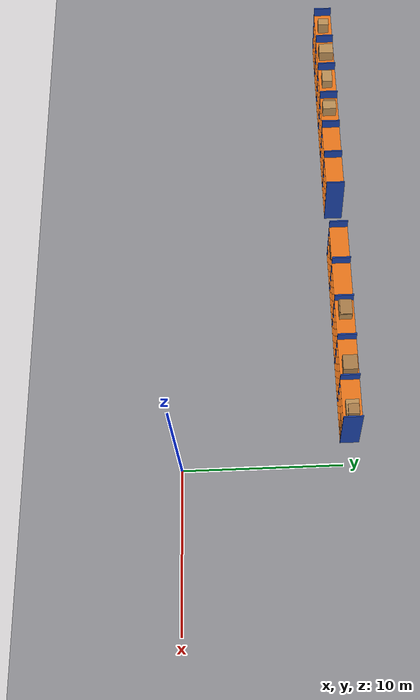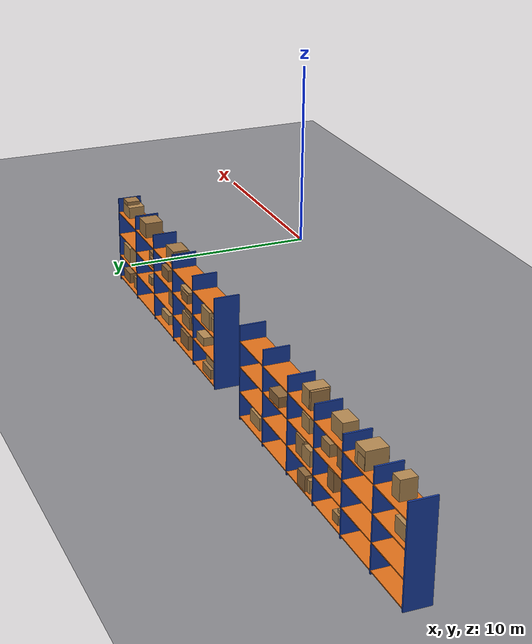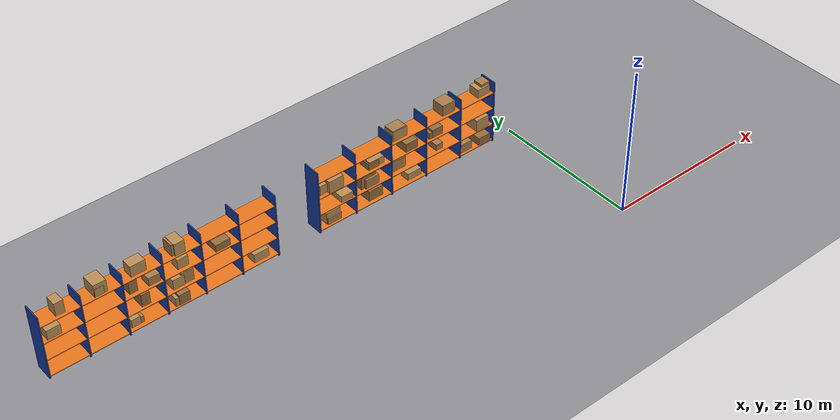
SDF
<sdf version="1.9">
 <world name="warehouse">
  <model name="ground_plane">
   <static>true</static>
   <link name="link">
    <collision name="collision">
     <geometry><plane><normal>0 0 1</normal><size>1 1</size></plane></geometry>
    </collision>
    <visual name="visual">
     <geometry><plane><normal>0 0 1</normal><size>200 100</size></plane></geometry>
     <material>
      <ambient>0.55 0.55 0.57 1</ambient>
      <diffuse>0.55 0.55 0.57 1</diffuse>
      <specular>0.1 0.1 0.1 1</specular>
     </material>
    </visual>
   </link>
  </model>
  <model name="rack24">
   <static>true</static>
   <link name="link">
    <collision name="up0_c">
     <pose>-33.000 10.500 2.250 0 0 0</pose>
     <geometry><box><size>0.080 1.200 4.500</size></box></geometry>
    </collision>
    <visual name="up0_v">
     <pose>-33.000 10.500 2.250 0 0 0</pose>
     <geometry><box><size>0.080 1.200 4.500</size></box></geometry>
     <material>
      <ambient>0.1 0.25 0.65 1</ambient>
      <diffuse>0.1 0.25 0.65 1</diffuse>
      <specular>0.1 0.1 0.1 1</specular>
     </material>
    </visual>
    <collision name="up1_c">
     <pose>-30.500 10.500 2.250 0 0 0</pose>
     <geometry><box><size>0.080 1.200 4.500</size></box></geometry>
    </collision>
    <visual name="up1_v">
     <pose>-30.500 10.500 2.250 0 0 0</pose>
     <geometry><box><size>0.080 1.200 4.500</size></box></geometry>
     <material>
      <ambient>0.1 0.25 0.65 1</ambient>
      <diffuse>0.1 0.25 0.65 1</diffuse>
      <specular>0.1 0.1 0.1 1</specular>
     </material>
    </visual>
    <collision name="up2_c">
     <pose>-28.000 10.500 2.250 0 0 0</pose>
     <geometry><box><size>0.080 1.200 4.500</size></box></geometry>
    </collision>
    <visual name="up2_v">
     <pose>-28.000 10.500 2.250 0 0 0</pose>
     <geometry><box><size>0.080 1.200 4.500</size></box></geometry>
     <material>
      <ambient>0.1 0.25 0.65 1</ambient>
      <diffuse>0.1 0.25 0.65 1</diffuse>
      <specular>0.1 0.1 0.1 1</specular>
     </material>
    </visual>
    <collision name="up3_c">
     <pose>-25.500 10.500 2.250 0 0 0</pose>
     <geometry><box><size>0.080 1.200 4.500</size></box></geometry>
    </collision>
    <visual name="up3_v">
     <pose>-25.500 10.500 2.250 0 0 0</pose>
     <geometry><box><size>0.080 1.200 4.500</size></box></geometry>
     <material>
      <ambient>0.1 0.25 0.65 1</ambient>
      <diffuse>0.1 0.25 0.65 1</diffuse>
      <specular>0.1 0.1 0.1 1</specular>
     </material>
    </visual>
    <collision name="up4_c">
     <pose>-23.000 10.500 2.250 0 0 0</pose>
     <geometry><box><size>0.080 1.200 4.500</size></box></geometry>
    </collision>
    <visual name="up4_v">
     <pose>-23.000 10.500 2.250 0 0 0</pose>
     <geometry><box><size>0.080 1.200 4.500</size></box></geometry>
     <material>
      <ambient>0.1 0.25 0.65 1</ambient>
      <diffuse>0.1 0.25 0.65 1</diffuse>
      <specular>0.1 0.1 0.1 1</specular>
     </material>
    </visual>
    <collision name="up5_c">
     <pose>-20.500 10.500 2.250 0 0 0</pose>
     <geometry><box><size>0.080 1.200 4.500</size></box></geometry>
    </collision>
    <visual name="up5_v">
     <pose>-20.500 10.500 2.250 0 0 0</pose>
     <geometry><box><size>0.080 1.200 4.500</size></box></geometry>
     <material>
      <ambient>0.1 0.25 0.65 1</ambient>
      <diffuse>0.1 0.25 0.65 1</diffuse>
      <specular>0.1 0.1 0.1 1</specular>
     </material>
    </visual>
    <collision name="up6_c">
     <pose>-18.000 10.500 2.250 0 0 0</pose>
     <geometry><box><size>0.080 1.200 4.500</size></box></geometry>
    </collision>
    <visual name="up6_v">
     <pose>-18.000 10.500 2.250 0 0 0</pose>
     <geometry><box><size>0.080 1.200 4.500</size></box></geometry>
     <material>
      <ambient>0.1 0.25 0.65 1</ambient>
      <diffuse>0.1 0.25 0.65 1</diffuse>
      <specular>0.1 0.1 0.1 1</specular>
     </material>
    </visual>
    <collision name="sh0_c">
     <pose>-25.500 10.500 0.150 0 0 0</pose>
     <geometry><box><size>15.000 1.200 0.050</size></box></geometry>
    </collision>
    <visual name="sh0_v">
     <pose>-25.500 10.500 0.150 0 0 0</pose>
     <geometry><box><size>15.000 1.200 0.050</size></box></geometry>
     <material>
      <ambient>0.9 0.45 0.1 1</ambient>
      <diffuse>0.9 0.45 0.1 1</diffuse>
      <specular>0.1 0.1 0.1 1</specular>
     </material>
    </visual>
    <collision name="sh1_c">
     <pose>-25.500 10.500 1.350 0 0 0</pose>
     <geometry><box><size>15.000 1.200 0.050</size></box></geometry>
    </collision>
    <visual name="sh1_v">
     <pose>-25.500 10.500 1.350 0 0 0</pose>
     <geometry><box><size>15.000 1.200 0.050</size></box></geometry>
     <material>
      <ambient>0.9 0.45 0.1 1</ambient>
      <diffuse>0.9 0.45 0.1 1</diffuse>
      <specular>0.1 0.1 0.1 1</specular>
     </material>
    </visual>
    <collision name="sh2_c">
     <pose>-25.500 10.500 2.550 0 0 0</pose>
     <geometry><box><size>15.000 1.200 0.050</size></box></geometry>
    </collision>
    <visual name="sh2_v">
     <pose>-25.500 10.500 2.550 0 0 0</pose>
     <geometry><box><size>15.000 1.200 0.050</size></box></geometry>
     <material>
      <ambient>0.9 0.45 0.1 1</ambient>
      <diffuse>0.9 0.45 0.1 1</diffuse>
      <specular>0.1 0.1 0.1 1</specular>
     </material>
    </visual>
    <collision name="sh3_c">
     <pose>-25.500 10.500 3.750 0 0 0</pose>
     <geometry><box><size>15.000 1.200 0.050</size></box></geometry>
    </collision>
    <visual name="sh3_v">
     <pose>-25.500 10.500 3.750 0 0 0</pose>
     <geometry><box><size>15.000 1.200 0.050</size></box></geometry>
     <material>
      <ambient>0.9 0.45 0.1 1</ambient>
      <diffuse>0.9 0.45 0.1 1</diffuse>
      <specular>0.1 0.1 0.1 1</specular>
     </material>
    </visual>
    <collision name="c0_c">
     <pose>-32.228 10.454 2.903 0 0 0</pose>
     <geometry><box><size>0.849 0.881 0.656</size></box></geometry>
    </collision>
    <visual name="c0_v">
     <pose>-32.228 10.454 2.903 0 0 0</pose>
     <geometry><box><size>0.849 0.881 0.656</size></box></geometry>
     <material>
      <ambient>0.72 0.55 0.33 1</ambient>
      <diffuse>0.72 0.55 0.33 1</diffuse>
      <specular>0.1 0.1 0.1 1</specular>
     </material>
    </visual>
    <collision name="c1_c">
     <pose>-32.311 10.492 2.803 0 0 0</pose>
     <geometry><box><size>0.615 0.701 0.456</size></box></geometry>
    </collision>
    <visual name="c1_v">
     <pose>-32.311 10.492 2.803 0 0 0</pose>
     <geometry><box><size>0.615 0.701 0.456</size></box></geometry>
     <material>
      <ambient>0.72 0.55 0.33 1</ambient>
      <diffuse>0.72 0.55 0.33 1</diffuse>
      <specular>0.1 0.1 0.1 1</specular>
     </material>
    </visual>
    <collision name="c2_c">
     <pose>-31.627 10.468 4.215 0 0 0</pose>
     <geometry><box><size>0.556 0.720 0.881</size></box></geometry>
    </collision>
    <visual name="c2_v">
     <pose>-31.627 10.468 4.215 0 0 0</pose>
     <geometry><box><size>0.556 0.720 0.881</size></box></geometry>
     <material>
      <ambient>0.72 0.55 0.33 1</ambient>
      <diffuse>0.72 0.55 0.33 1</diffuse>
      <specular>0.1 0.1 0.1 1</specular>
     </material>
    </visual>
    <collision name="c3_c">
     <pose>-29.224 10.523 4.189 0 0 0</pose>
     <geometry><box><size>0.804 0.975 0.827</size></box></geometry>
    </collision>
    <visual name="c3_v">
     <pose>-29.224 10.523 4.189 0 0 0</pose>
     <geometry><box><size>0.804 0.975 0.827</size></box></geometry>
     <material>
      <ambient>0.72 0.55 0.33 1</ambient>
      <diffuse>0.72 0.55 0.33 1</diffuse>
      <specular>0.1 0.1 0.1 1</specular>
     </material>
    </visual>
    <collision name="c4_c">
     <pose>-29.314 10.515 4.049 0 0 0</pose>
     <geometry><box><size>0.564 1.005 0.547</size></box></geometry>
    </collision>
    <visual name="c4_v">
     <pose>-29.314 10.515 4.049 0 0 0</pose>
     <geometry><box><size>0.564 1.005 0.547</size></box></geometry>
     <material>
      <ambient>0.72 0.55 0.33 1</ambient>
      <diffuse>0.72 0.55 0.33 1</diffuse>
      <specular>0.1 0.1 0.1 1</specular>
     </material>
    </visual>
    <collision name="c5_c">
     <pose>-27.179 10.549 0.390 0 0 0</pose>
     <geometry><box><size>0.516 0.731 0.431</size></box></geometry>
    </collision>
    <visual name="c5_v">
     <pose>-27.179 10.549 0.390 0 0 0</pose>
     <geometry><box><size>0.516 0.731 0.431</size></box></geometry>
     <material>
      <ambient>0.65 0.48 0.28 1</ambient>
      <diffuse>0.65 0.48 0.28 1</diffuse>
      <specular>0.1 0.1 0.1 1</specular>
     </material>
    </visual>
    <collision name="c6_c">
     <pose>-27.441 10.480 0.454 0 0 0</pose>
     <geometry><box><size>0.584 0.627 0.558</size></box></geometry>
    </collision>
    <visual name="c6_v">
     <pose>-27.441 10.480 0.454 0 0 0</pose>
     <geometry><box><size>0.584 0.627 0.558</size></box></geometry>
     <material>
      <ambient>0.72 0.55 0.33 1</ambient>
      <diffuse>0.72 0.55 0.33 1</diffuse>
      <specular>0.1 0.1 0.1 1</specular>
     </material>
    </visual>
    <collision name="c7_c">
     <pose>-26.713 10.493 1.803 0 0 0</pose>
     <geometry><box><size>0.548 0.862 0.855</size></box></geometry>
    </collision>
    <visual name="c7_v">
     <pose>-26.713 10.493 1.803 0 0 0</pose>
     <geometry><box><size>0.548 0.862 0.855</size></box></geometry>
     <material>
      <ambient>0.58 0.42 0.24 1</ambient>
      <diffuse>0.58 0.42 0.24 1</diffuse>
      <specular>0.1 0.1 0.1 1</specular>
     </material>
    </visual>
    <collision name="c8_c">
     <pose>-26.013 10.458 2.845 0 0 0</pose>
     <geometry><box><size>0.744 0.764 0.541</size></box></geometry>
    </collision>
    <visual name="c8_v">
     <pose>-26.013 10.458 2.845 0 0 0</pose>
     <geometry><box><size>0.744 0.764 0.541</size></box></geometry>
     <material>
      <ambient>0.65 0.48 0.28 1</ambient>
      <diffuse>0.65 0.48 0.28 1</diffuse>
      <specular>0.1 0.1 0.1 1</specular>
     </material>
    </visual>
    <collision name="c9_c">
     <pose>-27.277 10.509 3.017 0 0 0</pose>
     <geometry><box><size>0.511 0.644 0.884</size></box></geometry>
    </collision>
    <visual name="c9_v">
     <pose>-27.277 10.509 3.017 0 0 0</pose>
     <geometry><box><size>0.511 0.644 0.884</size></box></geometry>
     <material>
      <ambient>0.58 0.42 0.24 1</ambient>
      <diffuse>0.58 0.42 0.24 1</diffuse>
      <specular>0.1 0.1 0.1 1</specular>
     </material>
    </visual>
    <collision name="c10_c">
     <pose>-26.851 10.455 4.151 0 0 0</pose>
     <geometry><box><size>0.961 0.687 0.751</size></box></geometry>
    </collision>
    <visual name="c10_v">
     <pose>-26.851 10.455 4.151 0 0 0</pose>
     <geometry><box><size>0.961 0.687 0.751</size></box></geometry>
     <material>
      <ambient>0.72 0.55 0.33 1</ambient>
      <diffuse>0.72 0.55 0.33 1</diffuse>
      <specular>0.1 0.1 0.1 1</specular>
     </material>
    </visual>
    <collision name="c11_c">
     <pose>-24.514 10.490 0.468 0 0 0</pose>
     <geometry><box><size>0.911 0.962 0.585</size></box></geometry>
    </collision>
    <visual name="c11_v">
     <pose>-24.514 10.490 0.468 0 0 0</pose>
     <geometry><box><size>0.911 0.962 0.585</size></box></geometry>
     <material>
      <ambient>0.72 0.55 0.33 1</ambient>
      <diffuse>0.72 0.55 0.33 1</diffuse>
      <specular>0.1 0.1 0.1 1</specular>
     </material>
    </visual>
    <collision name="c12_c">
     <pose>-24.388 10.530 0.531 0 0 0</pose>
     <geometry><box><size>0.721 1.090 0.712</size></box></geometry>
    </collision>
    <visual name="c12_v">
     <pose>-24.388 10.530 0.531 0 0 0</pose>
     <geometry><box><size>0.721 1.090 0.712</size></box></geometry>
     <material>
      <ambient>0.58 0.42 0.24 1</ambient>
      <diffuse>0.58 0.42 0.24 1</diffuse>
      <specular>0.1 0.1 0.1 1</specular>
     </material>
    </visual>
    <collision name="c13_c">
     <pose>-24.568 10.531 1.726 0 0 0</pose>
     <geometry><box><size>0.756 0.889 0.703</size></box></geometry>
    </collision>
    <visual name="c13_v">
     <pose>-24.568 10.531 1.726 0 0 0</pose>
     <geometry><box><size>0.756 0.889 0.703</size></box></geometry>
     <material>
      <ambient>0.72 0.55 0.33 1</ambient>
      <diffuse>0.72 0.55 0.33 1</diffuse>
      <specular>0.1 0.1 0.1 1</specular>
     </material>
    </visual>
    <collision name="c14_c">
     <pose>-23.956 10.545 1.797 0 0 0</pose>
     <geometry><box><size>0.797 0.823 0.844</size></box></geometry>
    </collision>
    <visual name="c14_v">
     <pose>-23.956 10.545 1.797 0 0 0</pose>
     <geometry><box><size>0.797 0.823 0.844</size></box></geometry>
     <material>
      <ambient>0.65 0.48 0.28 1</ambient>
      <diffuse>0.65 0.48 0.28 1</diffuse>
      <specular>0.1 0.1 0.1 1</specular>
     </material>
    </visual>
    <collision name="c15_c">
     <pose>-24.109 10.487 2.913 0 0 0</pose>
     <geometry><box><size>0.700 0.635 0.677</size></box></geometry>
    </collision>
    <visual name="c15_v">
     <pose>-24.109 10.487 2.913 0 0 0</pose>
     <geometry><box><size>0.700 0.635 0.677</size></box></geometry>
     <material>
      <ambient>0.72 0.55 0.33 1</ambient>
      <diffuse>0.72 0.55 0.33 1</diffuse>
      <specular>0.1 0.1 0.1 1</specular>
     </material>
    </visual>
    <collision name="c16_c">
     <pose>-24.283 10.458 4.189 0 0 0</pose>
     <geometry><box><size>0.662 0.908 0.828</size></box></geometry>
    </collision>
    <visual name="c16_v">
     <pose>-24.283 10.458 4.189 0 0 0</pose>
     <geometry><box><size>0.662 0.908 0.828</size></box></geometry>
     <material>
      <ambient>0.72 0.55 0.33 1</ambient>
      <diffuse>0.72 0.55 0.33 1</diffuse>
      <specular>0.1 0.1 0.1 1</specular>
     </material>
    </visual>
    <collision name="c17_c">
     <pose>-24.360 10.499 4.179 0 0 0</pose>
     <geometry><box><size>0.792 0.796 0.809</size></box></geometry>
    </collision>
    <visual name="c17_v">
     <pose>-24.360 10.499 4.179 0 0 0</pose>
     <geometry><box><size>0.792 0.796 0.809</size></box></geometry>
     <material>
      <ambient>0.65 0.48 0.28 1</ambient>
      <diffuse>0.65 0.48 0.28 1</diffuse>
      <specular>0.1 0.1 0.1 1</specular>
     </material>
    </visual>
    <collision name="c18_c">
     <pose>-21.580 10.530 2.811 0 0 0</pose>
     <geometry><box><size>0.971 1.047 0.472</size></box></geometry>
    </collision>
    <visual name="c18_v">
     <pose>-21.580 10.530 2.811 0 0 0</pose>
     <geometry><box><size>0.971 1.047 0.472</size></box></geometry>
     <material>
      <ambient>0.58 0.42 0.24 1</ambient>
      <diffuse>0.58 0.42 0.24 1</diffuse>
      <specular>0.1 0.1 0.1 1</specular>
     </material>
    </visual>
    <collision name="c19_c">
     <pose>-19.065 10.476 0.475 0 0 0</pose>
     <geometry><box><size>1.011 0.695 0.599</size></box></geometry>
    </collision>
    <visual name="c19_v">
     <pose>-19.065 10.476 0.475 0 0 0</pose>
     <geometry><box><size>1.011 0.695 0.599</size></box></geometry>
     <material>
      <ambient>0.72 0.55 0.33 1</ambient>
      <diffuse>0.72 0.55 0.33 1</diffuse>
      <specular>0.1 0.1 0.1 1</specular>
     </material>
    </visual>
   </link>
  </model>
  <model name="rack25">
   <static>true</static>
   <link name="link">
    <collision name="up0_c">
     <pose>-15.000 10.500 2.250 0 0 0</pose>
     <geometry><box><size>0.080 1.200 4.500</size></box></geometry>
    </collision>
    <visual name="up0_v">
     <pose>-15.000 10.500 2.250 0 0 0</pose>
     <geometry><box><size>0.080 1.200 4.500</size></box></geometry>
     <material>
      <ambient>0.1 0.25 0.65 1</ambient>
      <diffuse>0.1 0.25 0.65 1</diffuse>
      <specular>0.1 0.1 0.1 1</specular>
     </material>
    </visual>
    <collision name="up1_c">
     <pose>-12.300 10.500 2.250 0 0 0</pose>
     <geometry><box><size>0.080 1.200 4.500</size></box></geometry>
    </collision>
    <visual name="up1_v">
     <pose>-12.300 10.500 2.250 0 0 0</pose>
     <geometry><box><size>0.080 1.200 4.500</size></box></geometry>
     <material>
      <ambient>0.1 0.25 0.65 1</ambient>
      <diffuse>0.1 0.25 0.65 1</diffuse>
      <specular>0.1 0.1 0.1 1</specular>
     </material>
    </visual>
    <collision name="up2_c">
     <pose>-9.600 10.500 2.250 0 0 0</pose>
     <geometry><box><size>0.080 1.200 4.500</size></box></geometry>
    </collision>
    <visual name="up2_v">
     <pose>-9.600 10.500 2.250 0 0 0</pose>
     <geometry><box><size>0.080 1.200 4.500</size></box></geometry>
     <material>
      <ambient>0.1 0.25 0.65 1</ambient>
      <diffuse>0.1 0.25 0.65 1</diffuse>
      <specular>0.1 0.1 0.1 1</specular>
     </material>
    </visual>
    <collision name="up3_c">
     <pose>-6.900 10.500 2.250 0 0 0</pose>
     <geometry><box><size>0.080 1.200 4.500</size></box></geometry>
    </collision>
    <visual name="up3_v">
     <pose>-6.900 10.500 2.250 0 0 0</pose>
     <geometry><box><size>0.080 1.200 4.500</size></box></geometry>
     <material>
      <ambient>0.1 0.25 0.65 1</ambient>
      <diffuse>0.1 0.25 0.65 1</diffuse>
      <specular>0.1 0.1 0.1 1</specular>
     </material>
    </visual>
    <collision name="up4_c">
     <pose>-4.200 10.500 2.250 0 0 0</pose>
     <geometry><box><size>0.080 1.200 4.500</size></box></geometry>
    </collision>
    <visual name="up4_v">
     <pose>-4.200 10.500 2.250 0 0 0</pose>
     <geometry><box><size>0.080 1.200 4.500</size></box></geometry>
     <material>
      <ambient>0.1 0.25 0.65 1</ambient>
      <diffuse>0.1 0.25 0.65 1</diffuse>
      <specular>0.1 0.1 0.1 1</specular>
     </material>
    </visual>
    <collision name="up5_c">
     <pose>-1.500 10.500 2.250 0 0 0</pose>
     <geometry><box><size>0.080 1.200 4.500</size></box></geometry>
    </collision>
    <visual name="up5_v">
     <pose>-1.500 10.500 2.250 0 0 0</pose>
     <geometry><box><size>0.080 1.200 4.500</size></box></geometry>
     <material>
      <ambient>0.1 0.25 0.65 1</ambient>
      <diffuse>0.1 0.25 0.65 1</diffuse>
      <specular>0.1 0.1 0.1 1</specular>
     </material>
    </visual>
    <collision name="sh0_c">
     <pose>-8.250 10.500 0.150 0 0 0</pose>
     <geometry><box><size>13.500 1.200 0.050</size></box></geometry>
    </collision>
    <visual name="sh0_v">
     <pose>-8.250 10.500 0.150 0 0 0</pose>
     <geometry><box><size>13.500 1.200 0.050</size></box></geometry>
     <material>
      <ambient>0.9 0.45 0.1 1</ambient>
      <diffuse>0.9 0.45 0.1 1</diffuse>
      <specular>0.1 0.1 0.1 1</specular>
     </material>
    </visual>
    <collision name="sh1_c">
     <pose>-8.250 10.500 1.350 0 0 0</pose>
     <geometry><box><size>13.500 1.200 0.050</size></box></geometry>
    </collision>
    <visual name="sh1_v">
     <pose>-8.250 10.500 1.350 0 0 0</pose>
     <geometry><box><size>13.500 1.200 0.050</size></box></geometry>
     <material>
      <ambient>0.9 0.45 0.1 1</ambient>
      <diffuse>0.9 0.45 0.1 1</diffuse>
      <specular>0.1 0.1 0.1 1</specular>
     </material>
    </visual>
    <collision name="sh2_c">
     <pose>-8.250 10.500 2.550 0 0 0</pose>
     <geometry><box><size>13.500 1.200 0.050</size></box></geometry>
    </collision>
    <visual name="sh2_v">
     <pose>-8.250 10.500 2.550 0 0 0</pose>
     <geometry><box><size>13.500 1.200 0.050</size></box></geometry>
     <material>
      <ambient>0.9 0.45 0.1 1</ambient>
      <diffuse>0.9 0.45 0.1 1</diffuse>
      <specular>0.1 0.1 0.1 1</specular>
     </material>
    </visual>
    <collision name="sh3_c">
     <pose>-8.250 10.500 3.750 0 0 0</pose>
     <geometry><box><size>13.500 1.200 0.050</size></box></geometry>
    </collision>
    <visual name="sh3_v">
     <pose>-8.250 10.500 3.750 0 0 0</pose>
     <geometry><box><size>13.500 1.200 0.050</size></box></geometry>
     <material>
      <ambient>0.9 0.45 0.1 1</ambient>
      <diffuse>0.9 0.45 0.1 1</diffuse>
      <specular>0.1 0.1 0.1 1</specular>
     </material>
    </visual>
    <collision name="c0_c">
     <pose>-13.877 10.494 0.582 0 0 0</pose>
     <geometry><box><size>0.987 0.723 0.813</size></box></geometry>
    </collision>
    <visual name="c0_v">
     <pose>-13.877 10.494 0.582 0 0 0</pose>
     <geometry><box><size>0.987 0.723 0.813</size></box></geometry>
     <material>
      <ambient>0.72 0.55 0.33 1</ambient>
      <diffuse>0.72 0.55 0.33 1</diffuse>
      <specular>0.1 0.1 0.1 1</specular>
     </material>
    </visual>
    <collision name="c1_c">
     <pose>-13.843 10.532 0.405 0 0 0</pose>
     <geometry><box><size>0.994 0.973 0.460</size></box></geometry>
    </collision>
    <visual name="c1_v">
     <pose>-13.843 10.532 0.405 0 0 0</pose>
     <geometry><box><size>0.994 0.973 0.460</size></box></geometry>
     <material>
      <ambient>0.65 0.48 0.28 1</ambient>
      <diffuse>0.65 0.48 0.28 1</diffuse>
      <specular>0.1 0.1 0.1 1</specular>
     </material>
    </visual>
    <collision name="c2_c">
     <pose>-12.899 10.483 1.579 0 0 0</pose>
     <geometry><box><size>0.862 0.966 0.408</size></box></geometry>
    </collision>
    <visual name="c2_v">
     <pose>-12.899 10.483 1.579 0 0 0</pose>
     <geometry><box><size>0.862 0.966 0.408</size></box></geometry>
     <material>
      <ambient>0.72 0.55 0.33 1</ambient>
      <diffuse>0.72 0.55 0.33 1</diffuse>
      <specular>0.1 0.1 0.1 1</specular>
     </material>
    </visual>
    <collision name="c3_c">
     <pose>-14.312 10.539 2.898 0 0 0</pose>
     <geometry><box><size>0.828 0.786 0.646</size></box></geometry>
    </collision>
    <visual name="c3_v">
     <pose>-14.312 10.539 2.898 0 0 0</pose>
     <geometry><box><size>0.828 0.786 0.646</size></box></geometry>
     <material>
      <ambient>0.72 0.55 0.33 1</ambient>
      <diffuse>0.72 0.55 0.33 1</diffuse>
      <specular>0.1 0.1 0.1 1</specular>
     </material>
    </visual>
    <collision name="c4_c">
     <pose>-13.699 10.474 3.007 0 0 0</pose>
     <geometry><box><size>1.034 1.091 0.863</size></box></geometry>
    </collision>
    <visual name="c4_v">
     <pose>-13.699 10.474 3.007 0 0 0</pose>
     <geometry><box><size>1.034 1.091 0.863</size></box></geometry>
     <material>
      <ambient>0.72 0.55 0.33 1</ambient>
      <diffuse>0.72 0.55 0.33 1</diffuse>
      <specular>0.1 0.1 0.1 1</specular>
     </material>
    </visual>
    <collision name="c5_c">
     <pose>-10.660 10.539 0.537 0 0 0</pose>
     <geometry><box><size>1.043 0.772 0.724</size></box></geometry>
    </collision>
    <visual name="c5_v">
     <pose>-10.660 10.539 0.537 0 0 0</pose>
     <geometry><box><size>1.043 0.772 0.724</size></box></geometry>
     <material>
      <ambient>0.58 0.42 0.24 1</ambient>
      <diffuse>0.58 0.42 0.24 1</diffuse>
      <specular>0.1 0.1 0.1 1</specular>
     </material>
    </visual>
    <collision name="c6_c">
     <pose>-10.996 10.493 1.691 0 0 0</pose>
     <geometry><box><size>0.976 0.936 0.632</size></box></geometry>
    </collision>
    <visual name="c6_v">
     <pose>-10.996 10.493 1.691 0 0 0</pose>
     <geometry><box><size>0.976 0.936 0.632</size></box></geometry>
     <material>
      <ambient>0.65 0.48 0.28 1</ambient>
      <diffuse>0.65 0.48 0.28 1</diffuse>
      <specular>0.1 0.1 0.1 1</specular>
     </material>
    </visual>
    <collision name="c7_c">
     <pose>-11.198 10.517 1.810 0 0 0</pose>
     <geometry><box><size>1.084 0.713 0.870</size></box></geometry>
    </collision>
    <visual name="c7_v">
     <pose>-11.198 10.517 1.810 0 0 0</pose>
     <geometry><box><size>1.084 0.713 0.870</size></box></geometry>
     <material>
      <ambient>0.58 0.42 0.24 1</ambient>
      <diffuse>0.58 0.42 0.24 1</diffuse>
      <specular>0.1 0.1 0.1 1</specular>
     </material>
    </visual>
    <collision name="c8_c">
     <pose>-10.531 10.500 2.826 0 0 0</pose>
     <geometry><box><size>1.098 0.671 0.502</size></box></geometry>
    </collision>
    <visual name="c8_v">
     <pose>-10.531 10.500 2.826 0 0 0</pose>
     <geometry><box><size>1.098 0.671 0.502</size></box></geometry>
     <material>
      <ambient>0.72 0.55 0.33 1</ambient>
      <diffuse>0.72 0.55 0.33 1</diffuse>
      <specular>0.1 0.1 0.1 1</specular>
     </material>
    </visual>
    <collision name="c9_c">
     <pose>-10.783 10.523 2.795 0 0 0</pose>
     <geometry><box><size>0.781 0.833 0.440</size></box></geometry>
    </collision>
    <visual name="c9_v">
     <pose>-10.783 10.523 2.795 0 0 0</pose>
     <geometry><box><size>0.781 0.833 0.440</size></box></geometry>
     <material>
      <ambient>0.58 0.42 0.24 1</ambient>
      <diffuse>0.58 0.42 0.24 1</diffuse>
      <specular>0.1 0.1 0.1 1</specular>
     </material>
    </visual>
    <collision name="c10_c">
     <pose>-7.655 10.488 0.411 0 0 0</pose>
     <geometry><box><size>1.035 0.647 0.472</size></box></geometry>
    </collision>
    <visual name="c10_v">
     <pose>-7.655 10.488 0.411 0 0 0</pose>
     <geometry><box><size>1.035 0.647 0.472</size></box></geometry>
     <material>
      <ambient>0.72 0.55 0.33 1</ambient>
      <diffuse>0.72 0.55 0.33 1</diffuse>
      <specular>0.1 0.1 0.1 1</specular>
     </material>
    </visual>
    <collision name="c11_c">
     <pose>-8.805 10.533 1.745 0 0 0</pose>
     <geometry><box><size>1.068 0.602 0.739</size></box></geometry>
    </collision>
    <visual name="c11_v">
     <pose>-8.805 10.533 1.745 0 0 0</pose>
     <geometry><box><size>1.068 0.602 0.739</size></box></geometry>
     <material>
      <ambient>0.65 0.48 0.28 1</ambient>
      <diffuse>0.65 0.48 0.28 1</diffuse>
      <specular>0.1 0.1 0.1 1</specular>
     </material>
    </visual>
    <collision name="c12_c">
     <pose>-7.958 10.457 2.869 0 0 0</pose>
     <geometry><box><size>0.906 0.880 0.587</size></box></geometry>
    </collision>
    <visual name="c12_v">
     <pose>-7.958 10.457 2.869 0 0 0</pose>
     <geometry><box><size>0.906 0.880 0.587</size></box></geometry>
     <material>
      <ambient>0.58 0.42 0.24 1</ambient>
      <diffuse>0.58 0.42 0.24 1</diffuse>
      <specular>0.1 0.1 0.1 1</specular>
     </material>
    </visual>
    <collision name="c13_c">
     <pose>-8.778 10.510 4.111 0 0 0</pose>
     <geometry><box><size>1.060 0.799 0.672</size></box></geometry>
    </collision>
    <visual name="c13_v">
     <pose>-8.778 10.510 4.111 0 0 0</pose>
     <geometry><box><size>1.060 0.799 0.672</size></box></geometry>
     <material>
      <ambient>0.72 0.55 0.33 1</ambient>
      <diffuse>0.72 0.55 0.33 1</diffuse>
      <specular>0.1 0.1 0.1 1</specular>
     </material>
    </visual>
    <collision name="c14_c">
     <pose>-8.782 10.548 4.132 0 0 0</pose>
     <geometry><box><size>1.017 0.766 0.713</size></box></geometry>
    </collision>
    <visual name="c14_v">
     <pose>-8.782 10.548 4.132 0 0 0</pose>
     <geometry><box><size>1.017 0.766 0.713</size></box></geometry>
     <material>
      <ambient>0.65 0.48 0.28 1</ambient>
      <diffuse>0.65 0.48 0.28 1</diffuse>
      <specular>0.1 0.1 0.1 1</specular>
     </material>
    </visual>
    <collision name="c15_c">
     <pose>-5.706 10.512 1.585 0 0 0</pose>
     <geometry><box><size>0.503 0.763 0.421</size></box></geometry>
    </collision>
    <visual name="c15_v">
     <pose>-5.706 10.512 1.585 0 0 0</pose>
     <geometry><box><size>0.503 0.763 0.421</size></box></geometry>
     <material>
      <ambient>0.65 0.48 0.28 1</ambient>
      <diffuse>0.65 0.48 0.28 1</diffuse>
      <specular>0.1 0.1 0.1 1</specular>
     </material>
    </visual>
    <collision name="c16_c">
     <pose>-6.251 10.547 2.789 0 0 0</pose>
     <geometry><box><size>0.573 0.940 0.428</size></box></geometry>
    </collision>
    <visual name="c16_v">
     <pose>-6.251 10.547 2.789 0 0 0</pose>
     <geometry><box><size>0.573 0.940 0.428</size></box></geometry>
     <material>
      <ambient>0.58 0.42 0.24 1</ambient>
      <diffuse>0.58 0.42 0.24 1</diffuse>
      <specular>0.1 0.1 0.1 1</specular>
     </material>
    </visual>
    <collision name="c17_c">
     <pose>-5.911 10.464 2.853 0 0 0</pose>
     <geometry><box><size>0.792 0.795 0.557</size></box></geometry>
    </collision>
    <visual name="c17_v">
     <pose>-5.911 10.464 2.853 0 0 0</pose>
     <geometry><box><size>0.792 0.795 0.557</size></box></geometry>
     <material>
      <ambient>0.58 0.42 0.24 1</ambient>
      <diffuse>0.58 0.42 0.24 1</diffuse>
      <specular>0.1 0.1 0.1 1</specular>
     </material>
    </visual>
    <collision name="c18_c">
     <pose>-5.004 10.543 4.157 0 0 0</pose>
     <geometry><box><size>0.956 0.894 0.763</size></box></geometry>
    </collision>
    <visual name="c18_v">
     <pose>-5.004 10.543 4.157 0 0 0</pose>
     <geometry><box><size>0.956 0.894 0.763</size></box></geometry>
     <material>
      <ambient>0.65 0.48 0.28 1</ambient>
      <diffuse>0.65 0.48 0.28 1</diffuse>
      <specular>0.1 0.1 0.1 1</specular>
     </material>
    </visual>
    <collision name="c19_c">
     <pose>-3.613 10.492 0.482 0 0 0</pose>
     <geometry><box><size>0.973 0.835 0.614</size></box></geometry>
    </collision>
    <visual name="c19_v">
     <pose>-3.613 10.492 0.482 0 0 0</pose>
     <geometry><box><size>0.973 0.835 0.614</size></box></geometry>
     <material>
      <ambient>0.65 0.48 0.28 1</ambient>
      <diffuse>0.65 0.48 0.28 1</diffuse>
      <specular>0.1 0.1 0.1 1</specular>
     </material>
    </visual>
    <collision name="c20_c">
     <pose>-2.164 10.453 0.442 0 0 0</pose>
     <geometry><box><size>0.926 1.014 0.533</size></box></geometry>
    </collision>
    <visual name="c20_v">
     <pose>-2.164 10.453 0.442 0 0 0</pose>
     <geometry><box><size>0.926 1.014 0.533</size></box></geometry>
     <material>
      <ambient>0.58 0.42 0.24 1</ambient>
      <diffuse>0.58 0.42 0.24 1</diffuse>
      <specular>0.1 0.1 0.1 1</specular>
     </material>
    </visual>
    <collision name="c21_c">
     <pose>-2.344 10.475 1.782 0 0 0</pose>
     <geometry><box><size>0.984 1.029 0.813</size></box></geometry>
    </collision>
    <visual name="c21_v">
     <pose>-2.344 10.475 1.782 0 0 0</pose>
     <geometry><box><size>0.984 1.029 0.813</size></box></geometry>
     <material>
      <ambient>0.72 0.55 0.33 1</ambient>
      <diffuse>0.72 0.55 0.33 1</diffuse>
      <specular>0.1 0.1 0.1 1</specular>
     </material>
    </visual>
    <collision name="c22_c">
     <pose>-1.979 10.543 4.159 0 0 0</pose>
     <geometry><box><size>0.651 0.661 0.769</size></box></geometry>
    </collision>
    <visual name="c22_v">
     <pose>-1.979 10.543 4.159 0 0 0</pose>
     <geometry><box><size>0.651 0.661 0.769</size></box></geometry>
     <material>
      <ambient>0.65 0.48 0.28 1</ambient>
      <diffuse>0.65 0.48 0.28 1</diffuse>
      <specular>0.1 0.1 0.1 1</specular>
     </material>
    </visual>
    <collision name="c23_c">
     <pose>-2.193 10.501 4.066 0 0 0</pose>
     <geometry><box><size>0.927 0.802 0.582</size></box></geometry>
    </collision>
    <visual name="c23_v">
     <pose>-2.193 10.501 4.066 0 0 0</pose>
     <geometry><box><size>0.927 0.802 0.582</size></box></geometry>
     <material>
      <ambient>0.72 0.55 0.33 1</ambient>
      <diffuse>0.72 0.55 0.33 1</diffuse>
      <specular>0.1 0.1 0.1 1</specular>
     </material>
    </visual>
   </link>
  </model>
 </world>
</sdf>
